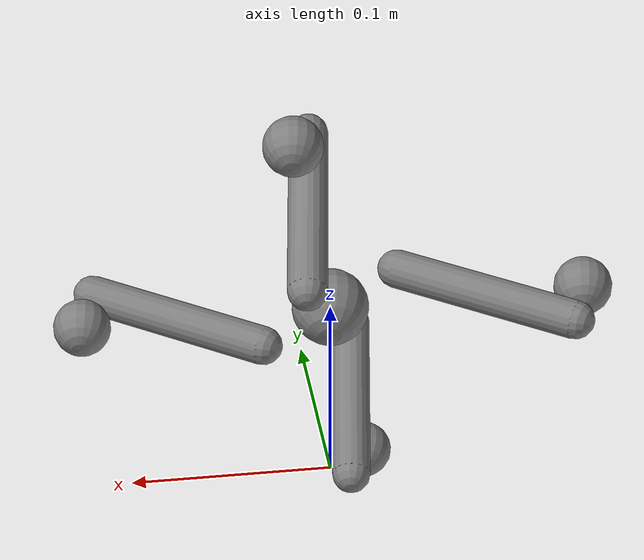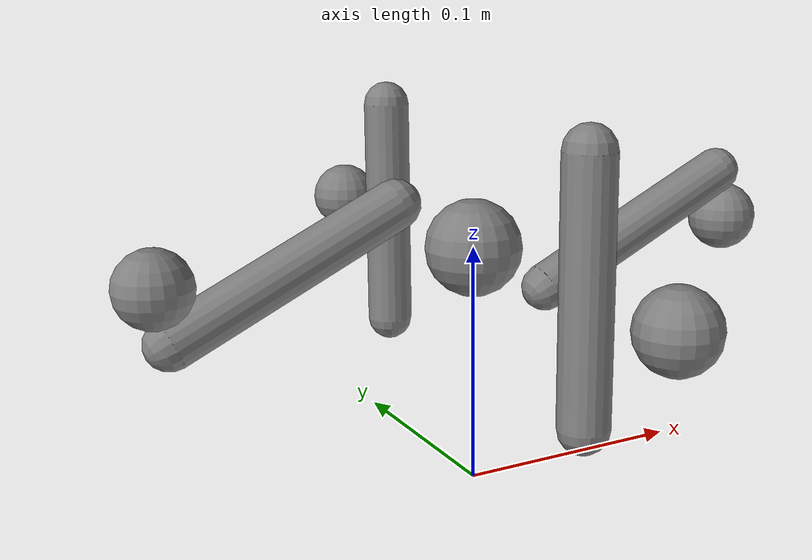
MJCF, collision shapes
<mujoco model="cf2_simple_nooverlap">
  <!--─────────────────────────────────────────────────────────────────────────
    1) Compiler & Default Classes
  ─────────────────────────────────────────────────────────────────────────-->
  <compiler inertiafromgeom="false" meshdir="assets" autolimits="true"/>
  <default>
    <default class="cf2">
      <!-- Visual geoms: contype=0, conaffinity=0, group=2 -->
      <default class="visual">
        <geom group="2" type="mesh" contype="0" conaffinity="0"/>
      </default>
      <!-- Collision geoms: contype=1, conaffinity=1, group=3 -->
      <default class="collision">
        <geom group="3" type="mesh" contype="1" conaffinity="1"/>
      </default>
      <site group="5"/>
    </default>
  </default>

  <asset>
    <material name="propeller_plastic"    rgba="0.792 0.820 0.933 1"/>
    <material name="medium_gloss_plastic" rgba="0.109 0.184 0.000 1"/>
    <material name="polished_gold"        rgba="0.969 0.878 0.600 1"/>
    <material name="polished_plastic"     rgba="0.631 0.659 0.678 1"/>
    <material name="burnished_chrome"     rgba="0.898 0.898 0.898 1"/>
    <material name="body_frame_plastic"   rgba="0.102 0.102 0.102 1"/>
    <material name="white"                rgba="1     1     1     1"/>

    <!-- Seven high‐resolution meshes for visualization only -->
    <mesh file="cf2_0.obj"/>
    <mesh file="cf2_1.obj"/>
    <mesh file="cf2_2.obj"/>
    <mesh file="cf2_3.obj"/>
    <mesh file="cf2_4.obj"/>
    <mesh file="cf2_5.obj"/>
    <mesh file="cf2_6.obj"/>
  </asset>

  <worldbody>
    <body name="cf2_1" pos="0 0 0.1" childclass="cf2">
      <freejoint/>
      <inertial pos="0 0 0"
                mass="0.027"
                diaginertia="2.3951e-5 2.3951e-5 3.2347e-5"/>

      <!-- Optional tracking camera -->
      <camera name="track" pos="-1 0 0.5" xyaxes="0 -1 0  1 0 2" mode="trackcom"/>

      <!--—— Visual meshes (unchanged) ——-->
      <geom mesh="cf2_0" material="propeller_plastic"    class="visual"/>
      <geom mesh="cf2_1" material="medium_gloss_plastic" class="visual"/>
      <geom mesh="cf2_2" material="polished_gold"        class="visual"/>
      <geom mesh="cf2_3" material="polished_plastic"     class="visual"/>
      <geom mesh="cf2_4" material="burnished_chrome"     class="visual"/>
      <geom mesh="cf2_5" material="body_frame_plastic"   class="visual"/>
      <geom mesh="cf2_6" material="white"                class="visual"/>

      <!--—— Simplified Collision Primitives (no initial overlap) ——-->
      <!-- 1) Body core: a small sphere of radius 0.02 at the origin -->
      <geom type="sphere"
            size="0.02"
            pos="0 0 0"
            class="collision"/>

      <!--  – Along +X: orientation = quaternion (0,1,0,  π/2) -->
      <geom type="capsule"
            size="0.01 0.05"
            pos="0.08  0    0"
            quat="0 1 0 1.5708"
            class="collision"/>
      <!--  – Along –X: -->
      <geom type="capsule"
            size="0.01 0.05"
            pos="-0.08 0    0"
            quat="0 1 0 1.5708"
            class="collision"/>
      <!--  – Along +Y: orientation = quaternion (1,0,0,  π/2) -->
      <geom type="capsule"
            size="0.01 0.05"
            pos="0    0.08  0"
            quat="1 0 0 1.5708"
            class="collision"/>
      <!--  – Along –Y: -->
      <geom type="capsule"
            size="0.01 0.05"
            pos="0   -0.08  0"
            quat="1 0 0 1.5708"
            class="collision"/>

      <geom type="sphere"
            size="0.015"
            pos="0.13  0    0"
            class="collision"/>
      <geom type="sphere"
            size="0.015"
            pos="-0.13 0    0"
            class="collision"/>
      <geom type="sphere"
            size="0.015"
            pos="0    0.13  0"
            class="collision"/>
      <geom type="sphere"
            size="0.015"
            pos="0   -0.13  0"
            class="collision"/>

      <!--—— Sites for IMU & Actuation ——-->
      <site name="imu"/>
      <site name="actuation"/>
    </body>
  </worldbody>

  <actuator>
    <!-- Body thrust (Z direction) -->
    <motor class="cf2" name="body_thrust" ctrlrange="0 0.35"
           gear="0 0 1  0  0    0"
           site="actuation"/>
    <!-- Roll moment (about X axis) -->
    <motor class="cf2" name="x_moment"    ctrlrange="-1 1"
           gear="0 0 0  -0.00001  0  0"
           site="actuation"/>
    <!-- Pitch moment (about Y axis) -->
    <motor class="cf2" name="y_moment"    ctrlrange="-1 1"
           gear="0 0 0  0  -0.00001  0"
           site="actuation"/>
    <!-- Yaw moment (about Z axis) -->
    <motor class="cf2" name="z_moment"    ctrlrange="-1 1"
           gear="0 0 0  0   0  -0.00001"
           site="actuation"/>
  </actuator>

  <sensor>
    <gyro          name="body_gyro"    site="imu"/>
    <accelerometer name="body_linacc"  site="imu"/>
    <framequat     name="body_quat"    objtype="site" objname="imu"/>
  </sensor>
</mujoco>
